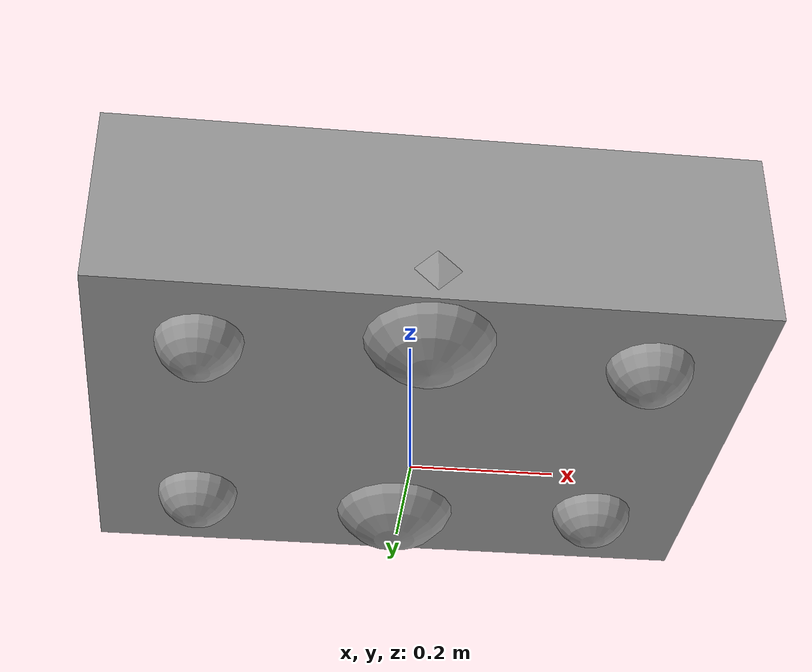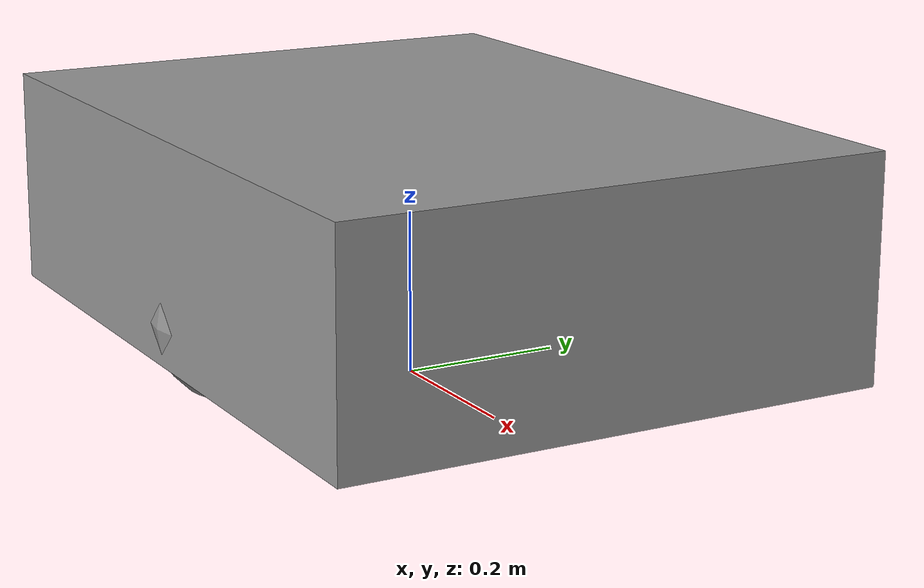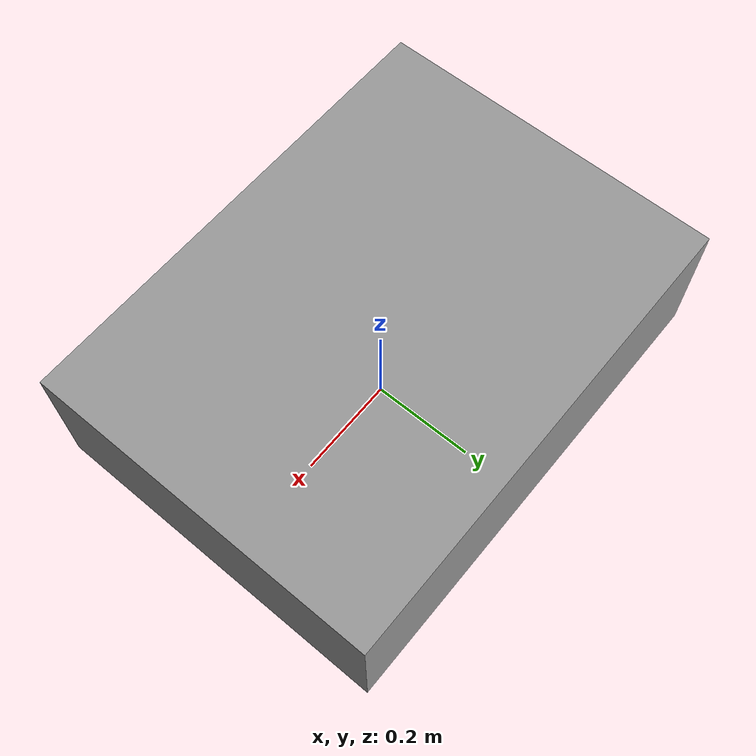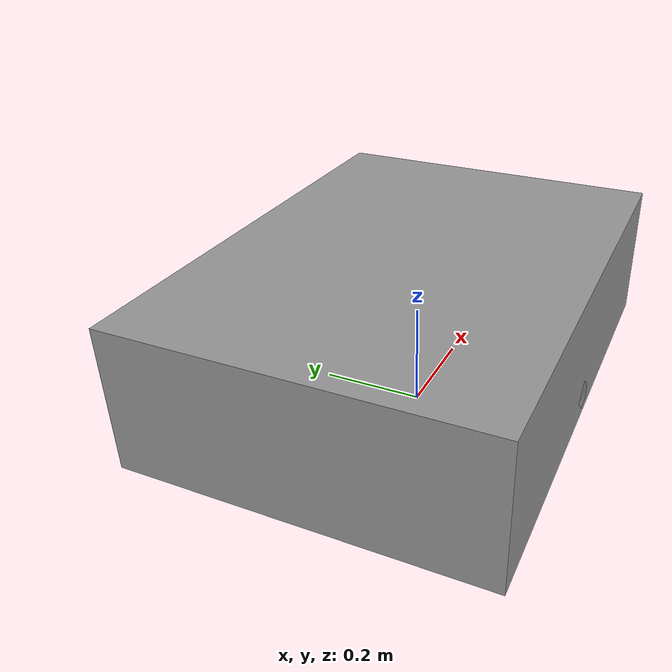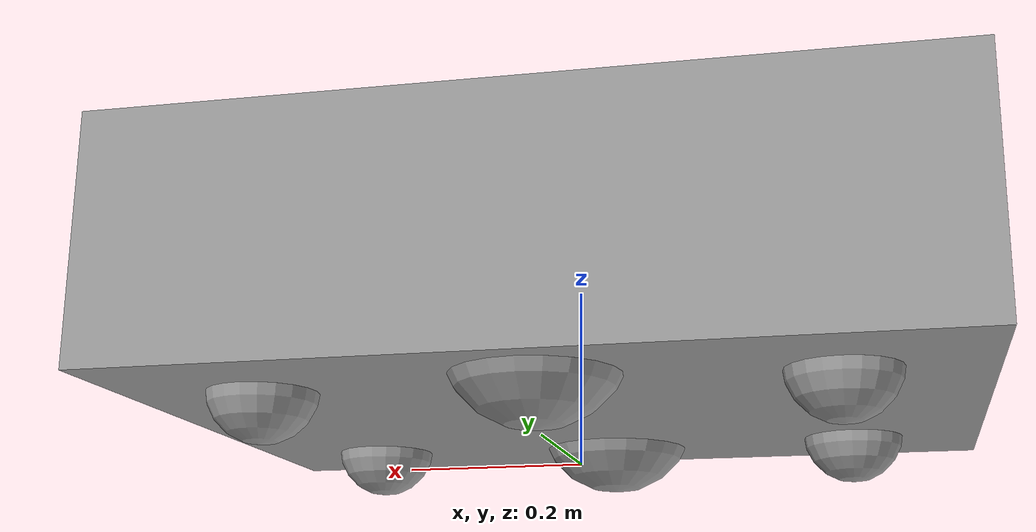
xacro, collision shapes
<?xml version="1.0" encoding="UTF-8" ?>
<robot xmlns:xacro="http://www.ros.org/wiki/xacro">

    <xacro:property name="wheel_separation" value="0.45" />
    <xacro:property name="wheel_radius" value="0.1" />
    <xacro:property name="caster_wheel_radius" value="0.06" />

    <xacro:property name="base_length" value="0.9" />
    <xacro:property name="base_width" value="0.67" />
    <xacro:property name="base_height" value="0.27" />

    <xacro:macro name="wheel_link" params="prefix">
        <link name="${prefix}_wheel_link">
            <visual>
                <origin xyz="0.1 -0.02 -0.1" rpy="1.5708 0 3.1416"/>
                <geometry>
                    <mesh filename="package://mobile_robot_description/meshes/wheel.STL" scale="0.001 0.001 0.001"/>
                </geometry>
                <material name="wheel_grey" />
            </visual>
            <collision>
                <origin xyz="0.0 0.0 0.0" rpy="0.0 0.0 0.0"/>
                <geometry>
                    <sphere radius="${wheel_radius}" />
                </geometry>
            </collision>
            <inertial>
                <mass value="2.0"/>
                <origin xyz="0 0 0" rpy="0 0 0"/>
                <inertia ixx="0.01" ixy="0" ixz="0" iyy="0.01" iyz="0" izz="0.02"/>
            </inertial>
        </link>
    </xacro:macro>

    <xacro:macro name="caster_wheel" params="prefix">
        <link name="${prefix}_caster_wheel">
            <visual>
                <geometry>
                    <sphere radius="${caster_wheel_radius}" />
                </geometry>
                <material name="gray" />
                <origin xyz="0 0 0" rpy="0 0 0" />
            </visual>
            <collision>
                <geometry>
                    <sphere radius="${caster_wheel_radius}" />
                </geometry>
                <origin xyz="0 0 0" rpy="0 0 0" />
            </collision>
            <xacro:sphere_inertial mass="0.25" radius="${caster_wheel_radius}" origin_xyz="0 0 0" origin_rpy="0 0 0"/>
        </link>
    </xacro:macro>

    <link name="base_footprint"/>

    <joint name="base_footprint_joint" type="fixed">
        <parent link="base_footprint"/>
        <child link="base_link"/>
        <origin xyz="0 0 0.05" rpy="0 0 0"/>
    </joint>

    <link name="base_link">
        <visual>
            <origin xyz="3.2 -0.32 0.0" rpy="1.5708 0.0 3.1416"/>
            <geometry>
                <mesh filename="package://mobile_robot_description/meshes/chasis.STL" scale="0.001 0.001 0.001"/>
            </geometry>
            <material name="chassis_grey" />
        </visual>
        <collision>
            <origin xyz="0.0 0.01 0.14" rpy="0.0 0.0 0.0"/>
            <geometry>
                <box size="${base_length} ${base_width} ${base_height}"/>
            </geometry>
        </collision>
        <inertial>
            <mass value="20.0"/>
            <origin xyz="0 0 0.1325" rpy="0 0 0"/>
            <inertia ixx="1.0" ixy="0" ixz="0" iyy="1.5" iyz="0" izz="2.0"/>
        </inertial>
    </link>

    <joint name="base_left_wheel_joint" type="continuous">
        <parent link="base_link"/>
        <child link="left_wheel_link"/>
        <origin xyz="0.0 0.23 0.05" rpy="0 0 0"/>
        <axis xyz="0 1 0" />
    </joint>

    <xacro:wheel_link prefix="left" />

    <joint name="base_right_wheel_joint" type="continuous">
        <parent link="base_link"/>
        <child link="right_wheel_link"/>
        <origin xyz="0.0 -0.23 0.05" rpy="0 0 0"/>
        <axis xyz="0 1 0" />
    </joint>

    <xacro:wheel_link prefix="right" />

    <joint name="base_rear_left_caster_wheel_joint" type="fixed">
        <parent link="base_link"/>
        <child link="rear_left_caster_wheel" />
        <origin xyz="-0.3 0.2 0.0105" rpy="0 0 0"/>
    </joint>

    <xacro:caster_wheel prefix="rear_left"/>

    <joint name="base_rear_right_caster_wheel_joint" type="fixed">
        <parent link="base_link"/>
        <child link="rear_right_caster_wheel" />
        <origin xyz="-0.3 -0.2 0.0105" rpy="0 0 0"/>
    </joint>

    <xacro:caster_wheel prefix="rear_right"/>

    <joint name="base_front_left_caster_wheel_joint" type="fixed">
        <parent link="base_link"/>
        <child link="front_left_caster_wheel" />
        <origin xyz="0.3 0.2 0.0105" rpy="0 0 0"/>
    </joint>

    <xacro:caster_wheel prefix="front_left"/>

    <joint name="base_front_right_caster_wheel_joint" type="fixed">
        <parent link="base_link"/>
        <child link="front_right_caster_wheel" />
        <origin xyz="0.3 -0.2 0.0105" rpy="0 0 0"/>
    </joint>

    <xacro:caster_wheel prefix="front_right"/>

</robot>
